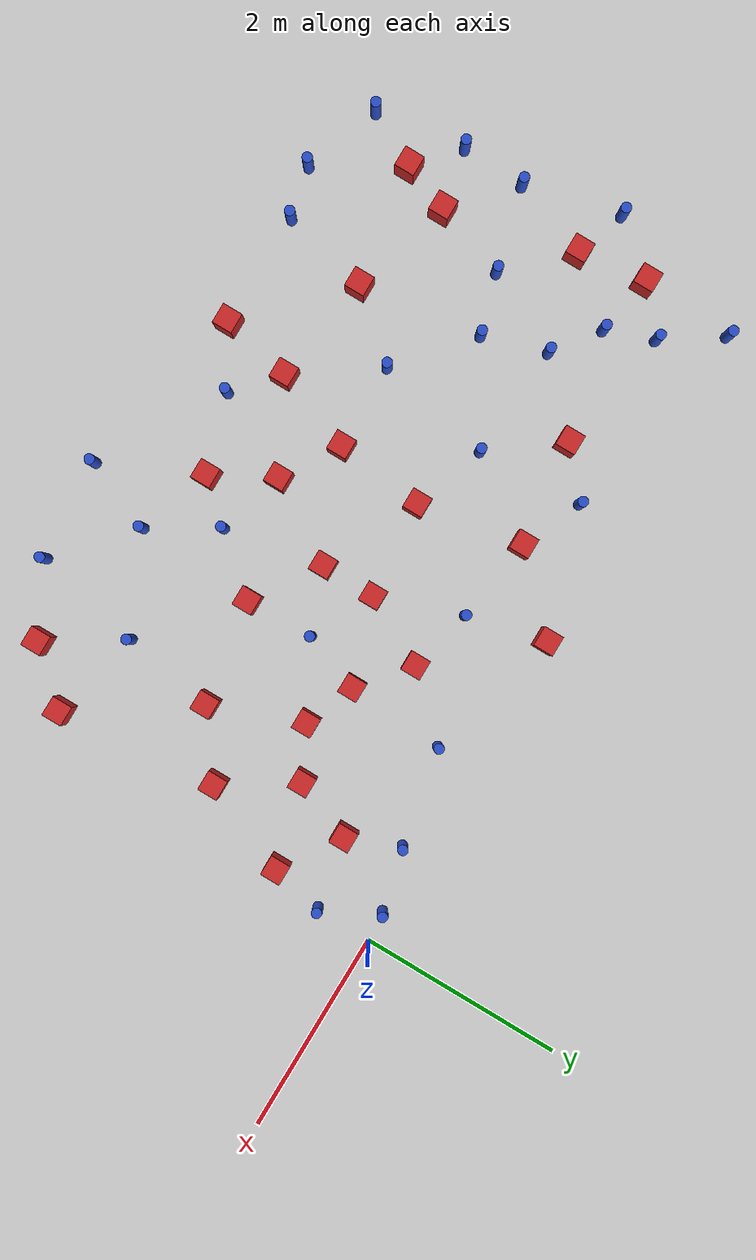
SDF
<sdf version="1.6">
 <world name="default">
  <model name="ground_plane">
   <static>1</static>
   <link name="link">
    <collision name="collision">
     <geometry><plane><normal>0 0 1</normal><size>100 100</size></plane></geometry>
     <surface><friction><ode><mu>100</mu><mu2>50</mu2></ode></friction></surface>
    </collision>
    <visual name="visual">
     <cast_shadows>0</cast_shadows>
     <geometry><plane><normal>0 0 1</normal><size>100 100</size></plane></geometry>
     <material>
      <ambient>1.0 1.0 1.0 1.0</ambient>
      <diffuse>0.8 0.8 0.8 1.0</diffuse>
      <specular>0.01 0.01 0.01 1.000000</specular>
     </material>
    </visual>
   </link>
  </model>
  <model name="pole_obstacle3">
   <static>true</static>
   <pose>-6.52432451563 -0.0444489107203 7.38925637345e-09 -8.47170692799e-08 1.24976765036e-08 -1.7451309302e-07</pose>
   <link name="link">
    <pose>0 0 0.3 0 -0 0</pose>
    <inertial>
     <mass>1</mass>
     <inertia><ixx>0.145833</ixx><ixy>0</ixy><ixz>0</ixz><iyy>0.145833</iyy><iyz>0</iyz><izz>0.125</izz></inertia>
    </inertial>
    <collision name="collision">
     <geometry><cylinder><radius>0.05</radius><length>.6</length></cylinder></geometry>
    </collision>
    <visual name="visual">
     <geometry><cylinder><radius>0.05</radius><length>.6</length></cylinder></geometry>
     <material>
      <script><name>Gazebo/Blue</name><uri>file://media/materials/scripts/gazebo.material</uri></script>
     </material>
    </visual>
   </link>
  </model>
  <model name="square_post_obstacle2">
   <static>true</static>
   <pose>-3.70692572244 -1.7061945904 1.91545236811e-07 -7.35059704564e-06 1.12565212e-07 2.39332434364e-05</pose>
   <link name="link">
    <pose>0 0 0.25 0 -0 0</pose>
    <inertial>
     <mass>100</mass>
     <inertia>
      <ixx>0.166667</ixx>
      <ixy>0</ixy>
      <ixz>0</ixz>
      <iyy>0.166667</iyy>
      <iyz>0</iyz>
      <izz>0.166667</izz>
     </inertia>
    </inertial>
    <collision name="collision"><geometry><box><size>.2 .2 .5</size></box></geometry></collision>
    <visual name="visual">
     <geometry><box><size>.2 .2 .5</size></box></geometry>
     <material>
      <script><name>Gazebo/Red</name><uri>file://media/materials/scripts/gazebo.material</uri></script>
     </material>
    </visual>
   </link>
  </model>
  <model name="square_post_obstacle3">
   <static>true</static>
   <pose>-3.88711328392 -0.675719960965 1.91545236811e-07 -7.35059704564e-06 1.12565212e-07 2.39332434364e-05</pose>
   <link name="link">
    <pose>0 0 0.25 0 -0 0</pose>
    <inertial>
     <mass>100</mass>
     <inertia>
      <ixx>0.166667</ixx>
      <ixy>0</ixy>
      <ixz>0</ixz>
      <iyy>0.166667</iyy>
      <iyz>0</iyz>
      <izz>0.166667</izz>
     </inertia>
    </inertial>
    <collision name="collision"><geometry><box><size>.2 .2 .5</size></box></geometry></collision>
    <visual name="visual">
     <geometry><box><size>.2 .2 .5</size></box></geometry>
     <material>
      <script><name>Gazebo/Red</name><uri>file://media/materials/scripts/gazebo.material</uri></script>
     </material>
    </visual>
   </link>
  </model>
  <model name="pole_obstacle8">
   <static>true</static>
   <pose>-5.37966165243 -4.06961896865 7.38925637345e-09 -8.47170692796e-08 1.24976764786e-08 -1.74513093032e-07</pose>
   <link name="link">
    <pose>0 0 0.3 0 -0 0</pose>
    <inertial>
     <mass>1</mass>
     <inertia><ixx>0.145833</ixx><ixy>0</ixy><ixz>0</ixz><iyy>0.145833</iyy><iyz>0</iyz><izz>0.125</izz></inertia>
    </inertial>
    <collision name="collision">
     <geometry><cylinder><radius>0.05</radius><length>.6</length></cylinder></geometry>
    </collision>
    <visual name="visual">
     <geometry><cylinder><radius>0.05</radius><length>.6</length></cylinder></geometry>
     <material>
      <script><name>Gazebo/Blue</name><uri>file://media/materials/scripts/gazebo.material</uri></script>
     </material>
    </visual>
   </link>
  </model>
  <model name="square_post_obstacle10">
   <static>true</static>
   <pose>-6.34527799305 -3.37768642562 1.91545236811e-07 -7.35059704564e-06 1.12565212e-07 2.39332434364e-05</pose>
   <link name="link">
    <pose>0 0 0.25 0 -0 0</pose>
    <inertial>
     <mass>100</mass>
     <inertia>
      <ixx>0.166667</ixx>
      <ixy>0</ixy>
      <ixz>0</ixz>
      <iyy>0.166667</iyy>
      <iyz>0</iyz>
      <izz>0.166667</izz>
     </inertia>
    </inertial>
    <collision name="collision"><geometry><box><size>.2 .2 .5</size></box></geometry></collision>
    <visual name="visual">
     <geometry><box><size>.2 .2 .5</size></box></geometry>
     <material>
      <script><name>Gazebo/Red</name><uri>file://media/materials/scripts/gazebo.material</uri></script>
     </material>
    </visual>
   </link>
  </model>
  <model name="square_post_obstacle11">
   <static>true</static>
   <pose>-2.42287995631 -0.95356776099 1.91545236811e-07 -7.35059704564e-06 1.12565212e-07 2.39332434364e-05</pose>
   <link name="link">
    <pose>0 0 0.25 0 -0 0</pose>
    <inertial>
     <mass>100</mass>
     <inertia>
      <ixx>0.166667</ixx>
      <ixy>0</ixy>
      <ixz>0</ixz>
      <iyy>0.166667</iyy>
      <iyz>0</iyz>
      <izz>0.166667</izz>
     </inertia>
    </inertial>
    <collision name="collision"><geometry><box><size>.2 .2 .5</size></box></geometry></collision>
    <visual name="visual">
     <geometry><box><size>.2 .2 .5</size></box></geometry>
     <material>
      <script><name>Gazebo/Red</name><uri>file://media/materials/scripts/gazebo.material</uri></script>
     </material>
    </visual>
   </link>
  </model>
  <model name="pole_obstacle19">
   <static>true</static>
   <pose>-1.26880020867 -3.33482278495 7.38925637345e-09 -8.47170692799e-08 1.24976765053e-08 -1.74513093017e-07</pose>
   <link name="link">
    <pose>0 0 0.3 0 -0 0</pose>
    <inertial>
     <mass>1</mass>
     <inertia><ixx>0.145833</ixx><ixy>0</ixy><ixz>0</ixz><iyy>0.145833</iyy><iyz>0</iyz><izz>0.125</izz></inertia>
    </inertial>
    <collision name="collision">
     <geometry><cylinder><radius>0.05</radius><length>.6</length></cylinder></geometry>
    </collision>
    <visual name="visual">
     <geometry><cylinder><radius>0.05</radius><length>.6</length></cylinder></geometry>
     <material>
      <script><name>Gazebo/Blue</name><uri>file://media/materials/scripts/gazebo.material</uri></script>
     </material>
    </visual>
   </link>
  </model>
  <model name="pole_obstacle22">
   <static>true</static>
   <pose>-2.21132156115 -3.77076330193 7.38925637345e-09 -8.47170692798e-08 1.24976764939e-08 -1.74513093025e-07</pose>
   <link name="link">
    <pose>0 0 0.3 0 -0 0</pose>
    <inertial>
     <mass>1</mass>
     <inertia><ixx>0.145833</ixx><ixy>0</ixy><ixz>0</ixz><iyy>0.145833</iyy><iyz>0</iyz><izz>0.125</izz></inertia>
    </inertial>
    <collision name="collision">
     <geometry><cylinder><radius>0.05</radius><length>.6</length></cylinder></geometry>
    </collision>
    <visual name="visual">
     <geometry><cylinder><radius>0.05</radius><length>.6</length></cylinder></geometry>
     <material>
      <script><name>Gazebo/Blue</name><uri>file://media/materials/scripts/gazebo.material</uri></script>
     </material>
    </visual>
   </link>
  </model>
  <model name="pole_obstacle24">
   <static>true</static>
   <pose>-6.76390360113 -3.02652793016 7.38925637345e-09 -8.47170692798e-08 1.24976764937e-08 -1.74513093023e-07</pose>
   <link name="link">
    <pose>0 0 0.3 0 -0 0</pose>
    <inertial>
     <mass>1</mass>
     <inertia><ixx>0.145833</ixx><ixy>0</ixy><ixz>0</ixz><iyy>0.145833</iyy><iyz>0</iyz><izz>0.125</izz></inertia>
    </inertial>
    <collision name="collision">
     <geometry><cylinder><radius>0.05</radius><length>.6</length></cylinder></geometry>
    </collision>
    <visual name="visual">
     <geometry><cylinder><radius>0.05</radius><length>.6</length></cylinder></geometry>
     <material>
      <script><name>Gazebo/Blue</name><uri>file://media/materials/scripts/gazebo.material</uri></script>
     </material>
    </visual>
   </link>
  </model>
  <model name="square_post_obstacle19">
   <static>true</static>
   <pose>-0.156634946968 -1.08705150443 1.91545236811e-07 -7.35059704564e-06 1.12565212e-07 2.39332434364e-05</pose>
   <link name="link">
    <pose>0 0 0.25 0 -0 0</pose>
    <inertial>
     <mass>100</mass>
     <inertia>
      <ixx>0.166667</ixx>
      <ixy>0</ixy>
      <ixz>0</ixz>
      <iyy>0.166667</iyy>
      <iyz>0</iyz>
      <izz>0.166667</izz>
     </inertia>
    </inertial>
    <collision name="collision"><geometry><box><size>.2 .2 .5</size></box></geometry></collision>
    <visual name="visual">
     <geometry><box><size>.2 .2 .5</size></box></geometry>
     <material>
      <script><name>Gazebo/Red</name><uri>file://media/materials/scripts/gazebo.material</uri></script>
     </material>
    </visual>
   </link>
  </model>
  <model name="square_post_obstacle29">
   <static>true</static>
   <pose>-2.76971232478 -1.61561775754 1.91545236811e-07 -7.35059704564e-06 1.12565212e-07 2.39332434364e-05</pose>
   <link name="link">
    <pose>0 0 0.25 0 -0 0</pose>
    <inertial>
     <mass>100</mass>
     <inertia>
      <ixx>0.166667</ixx>
      <ixy>0</ixy>
      <ixz>0</ixz>
      <iyy>0.166667</iyy>
      <iyz>0</iyz>
      <izz>0.166667</izz>
     </inertia>
    </inertial>
    <collision name="collision"><geometry><box><size>.2 .2 .5</size></box></geometry></collision>
    <visual name="visual">
     <geometry><box><size>.2 .2 .5</size></box></geometry>
     <material>
      <script><name>Gazebo/Red</name><uri>file://media/materials/scripts/gazebo.material</uri></script>
     </material>
    </visual>
   </link>
  </model>
  <model name="square_post_obstacle30">
   <static>true</static>
   <pose>-2.93852463587 -3.50651644793 1.91545236811e-07 -7.35059704564e-06 1.12565212e-07 2.39332434364e-05</pose>
   <link name="link">
    <pose>0 0 0.25 0 -0 0</pose>
    <inertial>
     <mass>100</mass>
     <inertia>
      <ixx>0.166667</ixx>
      <ixy>0</ixy>
      <ixz>0</ixz>
      <iyy>0.166667</iyy>
      <iyz>0</iyz>
      <izz>0.166667</izz>
     </inertia>
    </inertial>
    <collision name="collision"><geometry><box><size>.2 .2 .5</size></box></geometry></collision>
    <visual name="visual">
     <geometry><box><size>.2 .2 .5</size></box></geometry>
     <material>
      <script><name>Gazebo/Red</name><uri>file://media/materials/scripts/gazebo.material</uri></script>
     </material>
    </visual>
   </link>
  </model>
  <model name="pole_obstacle39">
   <static>true</static>
   <pose>-0.0265494629693 -0.564939502871 7.38925637345e-09 -8.47170692798e-08 1.24976764914e-08 -1.74513093025e-07</pose>
   <link name="link">
    <pose>0 0 0.3 0 -0 0</pose>
    <inertial>
     <mass>1</mass>
     <inertia><ixx>0.145833</ixx><ixy>0</ixy><ixz>0</ixz><iyy>0.145833</iyy><iyz>0</iyz><izz>0.125</izz></inertia>
    </inertial>
    <collision name="collision">
     <geometry><cylinder><radius>0.05</radius><length>.6</length></cylinder></geometry>
    </collision>
    <visual name="visual">
     <geometry><cylinder><radius>0.05</radius><length>.6</length></cylinder></geometry>
     <material>
      <script><name>Gazebo/Blue</name><uri>file://media/materials/scripts/gazebo.material</uri></script>
     </material>
    </visual>
   </link>
  </model>
  <model name="square_post_obstacle31">
   <static>true</static>
   <pose>-1.12243625598 -2.42116664696 1.91545236811e-07 -7.35059704564e-06 1.12565212e-07 2.39332434364e-05</pose>
   <link name="link">
    <pose>0 0 0.25 0 -0 0</pose>
    <inertial>
     <mass>100</mass>
     <inertia>
      <ixx>0.166667</ixx>
      <ixy>0</ixy>
      <ixz>0</ixz>
      <iyy>0.166667</iyy>
      <iyz>0</iyz>
      <izz>0.166667</izz>
     </inertia>
    </inertial>
    <collision name="collision"><geometry><box><size>.2 .2 .5</size></box></geometry></collision>
    <visual name="visual">
     <geometry><box><size>.2 .2 .5</size></box></geometry>
     <material>
      <script><name>Gazebo/Red</name><uri>file://media/materials/scripts/gazebo.material</uri></script>
     </material>
    </visual>
   </link>
  </model>
  <model name="pole_obstacle43">
   <static>true</static>
   <pose>-0.922115328884 -0.188899345458 7.38925637345e-09 -8.47170692799e-08 1.24976765096e-08 -1.74513093014e-07</pose>
   <link name="link">
    <pose>0 0 0.3 0 -0 0</pose>
    <inertial>
     <mass>1</mass>
     <inertia><ixx>0.145833</ixx><ixy>0</ixy><ixz>0</ixz><iyy>0.145833</iyy><iyz>0</iyz><izz>0.125</izz></inertia>
    </inertial>
    <collision name="collision">
     <geometry><cylinder><radius>0.05</radius><length>.6</length></cylinder></geometry>
    </collision>
    <visual name="visual">
     <geometry><cylinder><radius>0.05</radius><length>.6</length></cylinder></geometry>
     <material>
      <script><name>Gazebo/Blue</name><uri>file://media/materials/scripts/gazebo.material</uri></script>
     </material>
    </visual>
   </link>
  </model>
  <model name="pole_obstacle55">
   <static>true</static>
   <pose>-6.63234236846 -3.90736994178 7.38925637345e-09 -8.47170692798e-08 1.24976764937e-08 -1.74513093023e-07</pose>
   <link name="link">
    <pose>0 0 0.3 0 -0 0</pose>
    <inertial>
     <mass>1</mass>
     <inertia><ixx>0.145833</ixx><ixy>0</ixy><ixz>0</ixz><iyy>0.145833</iyy><iyz>0</iyz><izz>0.125</izz></inertia>
    </inertial>
    <collision name="collision">
     <geometry><cylinder><radius>0.05</radius><length>.6</length></cylinder></geometry>
    </collision>
    <visual name="visual">
     <geometry><cylinder><radius>0.05</radius><length>.6</length></cylinder></geometry>
     <material>
      <script><name>Gazebo/Blue</name><uri>file://media/materials/scripts/gazebo.material</uri></script>
     </material>
    </visual>
   </link>
  </model>
  <model name="square_post_obstacle52">
   <static>true</static>
   <pose>-6.4682823946 -1.62873893158 1.91545236811e-07 -7.35059704564e-06 1.12565212e-07 2.39332434364e-05</pose>
   <link name="link">
    <pose>0 0 0.25 0 -0 0</pose>
    <inertial>
     <mass>100</mass>
     <inertia>
      <ixx>0.166667</ixx>
      <ixy>0</ixy>
      <ixz>0</ixz>
      <iyy>0.166667</iyy>
      <iyz>0</iyz>
      <izz>0.166667</izz>
     </inertia>
    </inertial>
    <collision name="collision"><geometry><box><size>.2 .2 .5</size></box></geometry></collision>
    <visual name="visual">
     <geometry><box><size>.2 .2 .5</size></box></geometry>
     <material>
      <script><name>Gazebo/Red</name><uri>file://media/materials/scripts/gazebo.material</uri></script>
     </material>
    </visual>
   </link>
  </model>
  <model name="pole_obstacle74">
   <static>true</static>
   <pose>-1.5056622778 -4.39693730111 7.38925637345e-09 -8.47170692799e-08 1.24976765033e-08 -1.74513093018e-07</pose>
   <link name="link">
    <pose>0 0 0.3 0 -0 0</pose>
    <inertial>
     <mass>1</mass>
     <inertia><ixx>0.145833</ixx><ixy>0</ixy><ixz>0</ixz><iyy>0.145833</iyy><iyz>0</iyz><izz>0.125</izz></inertia>
    </inertial>
    <collision name="collision">
     <geometry><cylinder><radius>0.05</radius><length>.6</length></cylinder></geometry>
    </collision>
    <visual name="visual">
     <geometry><cylinder><radius>0.05</radius><length>.6</length></cylinder></geometry>
     <material>
      <script><name>Gazebo/Blue</name><uri>file://media/materials/scripts/gazebo.material</uri></script>
     </material>
    </visual>
   </link>
  </model>
  <model name="pole_obstacle91">
   <static>true</static>
   <pose>-5.54018511833 -1.38757523051 7.38925637345e-09 -8.471706928e-08 1.24976765134e-08 -1.74513093015e-07</pose>
   <link name="link">
    <pose>0 0 0.3 0 -0 0</pose>
    <inertial>
     <mass>1</mass>
     <inertia><ixx>0.145833</ixx><ixy>0</ixy><ixz>0</ixz><iyy>0.145833</iyy><iyz>0</iyz><izz>0.125</izz></inertia>
    </inertial>
    <collision name="collision">
     <geometry><cylinder><radius>0.05</radius><length>.6</length></cylinder></geometry>
    </collision>
    <visual name="visual">
     <geometry><cylinder><radius>0.05</radius><length>.6</length></cylinder></geometry>
     <material>
      <script><name>Gazebo/Blue</name><uri>file://media/materials/scripts/gazebo.material</uri></script>
     </material>
    </visual>
   </link>
  </model>
  <model name="square_post_obstacle85">
   <static>true</static>
   <pose>-1.45206795194 -1.5387293437 1.91545236811e-07 -7.35059704564e-06 1.12565212e-07 2.39332434364e-05</pose>
   <link name="link">
    <pose>0 0 0.25 0 -0 0</pose>
    <inertial>
     <mass>100</mass>
     <inertia>
      <ixx>0.166667</ixx>
      <ixy>0</ixy>
      <ixz>0</ixz>
      <iyy>0.166667</iyy>
      <iyz>0</iyz>
      <izz>0.166667</izz>
     </inertia>
    </inertial>
    <collision name="collision"><geometry><box><size>.2 .2 .5</size></box></geometry></collision>
    <visual name="visual">
     <geometry><box><size>.2 .2 .5</size></box></geometry>
     <material>
      <script><name>Gazebo/Red</name><uri>file://media/materials/scripts/gazebo.material</uri></script>
     </material>
    </visual>
   </link>
  </model>
  <model name="square_post_obstacle89">
   <static>true</static>
   <pose>-0.730378002831 -0.702988328249 1.91545236811e-07 -7.35059704564e-06 1.12565212e-07 2.39332434364e-05</pose>
   <link name="link">
    <pose>0 0 0.25 0 -0 0</pose>
    <inertial>
     <mass>100</mass>
     <inertia>
      <ixx>0.166667</ixx>
      <ixy>0</ixy>
      <ixz>0</ixz>
      <iyy>0.166667</iyy>
      <iyz>0</iyz>
      <izz>0.166667</izz>
     </inertia>
    </inertial>
    <collision name="collision"><geometry><box><size>.2 .2 .5</size></box></geometry></collision>
    <visual name="visual">
     <geometry><box><size>.2 .2 .5</size></box></geometry>
     <material>
      <script><name>Gazebo/Red</name><uri>file://media/materials/scripts/gazebo.material</uri></script>
     </material>
    </visual>
   </link>
  </model>
  <model name="pole_obstacle101">
   <static>true</static>
   <pose>-4.65266463231 -2.59816612865 7.38925637345e-09 -8.47170692798e-08 1.24976764937e-08 -1.74513093023e-07</pose>
   <link name="link">
    <pose>0 0 0.3 0 -0 0</pose>
    <inertial>
     <mass>1</mass>
     <inertia><ixx>0.145833</ixx><ixy>0</ixy><ixz>0</ixz><iyy>0.145833</iyy><iyz>0</iyz><izz>0.125</izz></inertia>
    </inertial>
    <collision name="collision">
     <geometry><cylinder><radius>0.05</radius><length>.6</length></cylinder></geometry>
    </collision>
    <visual name="visual">
     <geometry><cylinder><radius>0.05</radius><length>.6</length></cylinder></geometry>
     <material>
      <script><name>Gazebo/Blue</name><uri>file://media/materials/scripts/gazebo.material</uri></script>
     </material>
    </visual>
   </link>
  </model>
  <model name="square_post_obstacle94">
   <static>true</static>
   <pose>-2.13864173265 -2.58306816552 1.91545236811e-07 -7.35059704564e-06 1.12565212e-07 2.39332434364e-05</pose>
   <link name="link">
    <pose>0 0 0.25 0 -0 0</pose>
    <inertial>
     <mass>100</mass>
     <inertia>
      <ixx>0.166667</ixx>
      <ixy>0</ixy>
      <ixz>0</ixz>
      <iyy>0.166667</iyy>
      <iyz>0</iyz>
      <izz>0.166667</izz>
     </inertia>
    </inertial>
    <collision name="collision"><geometry><box><size>.2 .2 .5</size></box></geometry></collision>
    <visual name="visual">
     <geometry><box><size>.2 .2 .5</size></box></geometry>
     <material>
      <script><name>Gazebo/Red</name><uri>file://media/materials/scripts/gazebo.material</uri></script>
     </material>
    </visual>
   </link>
  </model>
  <model name="pole_obstacle106">
   <static>true</static>
   <pose>-6.74138721276 -2.39681399516 7.38925637345e-09 -8.47170692798e-08 1.24976764937e-08 -1.74513093023e-07</pose>
   <link name="link">
    <pose>0 0 0.3 0 -0 0</pose>
    <inertial>
     <mass>1</mass>
     <inertia><ixx>0.145833</ixx><ixy>0</ixy><ixz>0</ixz><iyy>0.145833</iyy><iyz>0</iyz><izz>0.125</izz></inertia>
    </inertial>
    <collision name="collision">
     <geometry><cylinder><radius>0.05</radius><length>.6</length></cylinder></geometry>
    </collision>
    <visual name="visual">
     <geometry><cylinder><radius>0.05</radius><length>.6</length></cylinder></geometry>
     <material>
      <script><name>Gazebo/Blue</name><uri>file://media/materials/scripts/gazebo.material</uri></script>
     </material>
    </visual>
   </link>
  </model>
  <model name="pole_obstacle114">
   <static>true</static>
   <pose>-2.50338091352 -4.46691991595 7.38925637345e-09 -8.47170692798e-08 1.24976765033e-08 -1.74513093019e-07</pose>
   <link name="link">
    <pose>0 0 0.3 0 -0 0</pose>
    <inertial>
     <mass>1</mass>
     <inertia><ixx>0.145833</ixx><ixy>0</ixy><ixz>0</ixz><iyy>0.145833</iyy><iyz>0</iyz><izz>0.125</izz></inertia>
    </inertial>
    <collision name="collision">
     <geometry><cylinder><radius>0.05</radius><length>.6</length></cylinder></geometry>
    </collision>
    <visual name="visual">
     <geometry><cylinder><radius>0.05</radius><length>.6</length></cylinder></geometry>
     <material>
      <script><name>Gazebo/Blue</name><uri>file://media/materials/scripts/gazebo.material</uri></script>
     </material>
    </visual>
   </link>
  </model>
  <model name="pole_obstacle121">
   <static>true</static>
   <pose>-6.98115264469 -1.45860127084 7.38925637345e-09 -8.471706928e-08 1.24976765134e-08 -1.74513093015e-07</pose>
   <link name="link">
    <pose>0 0 0.3 0 -0 0</pose>
    <inertial>
     <mass>1</mass>
     <inertia><ixx>0.145833</ixx><ixy>0</ixy><ixz>0</ixz><iyy>0.145833</iyy><iyz>0</iyz><izz>0.125</izz></inertia>
    </inertial>
    <collision name="collision">
     <geometry><cylinder><radius>0.05</radius><length>.6</length></cylinder></geometry>
    </collision>
    <visual name="visual">
     <geometry><cylinder><radius>0.05</radius><length>.6</length></cylinder></geometry>
     <material>
      <script><name>Gazebo/Blue</name><uri>file://media/materials/scripts/gazebo.material</uri></script>
     </material>
    </visual>
   </link>
  </model>
  <model name="pole_obstacle125">
   <static>true</static>
   <pose>-2.59412136716 -3.12690519862 7.38925637345e-09 -8.47170692798e-08 1.24976764939e-08 -1.74513093025e-07</pose>
   <link name="link">
    <pose>0 0 0.3 0 -0 0</pose>
    <inertial>
     <mass>1</mass>
     <inertia><ixx>0.145833</ixx><ixy>0</ixy><ixz>0</ixz><iyy>0.145833</iyy><iyz>0</iyz><izz>0.125</izz></inertia>
    </inertial>
    <collision name="collision">
     <geometry><cylinder><radius>0.05</radius><length>.6</length></cylinder></geometry>
    </collision>
    <visual name="visual">
     <geometry><cylinder><radius>0.05</radius><length>.6</length></cylinder></geometry>
     <material>
      <script><name>Gazebo/Blue</name><uri>file://media/materials/scripts/gazebo.material</uri></script>
     </material>
    </visual>
   </link>
  </model>
  <model name="pole_obstacle127">
   <static>true</static>
   <pose>-5.87792899911 -4.18277182565 7.38925637345e-09 -8.47170692796e-08 1.24976764786e-08 -1.74513093032e-07</pose>
   <link name="link">
    <pose>0 0 0.3 0 -0 0</pose>
    <inertial>
     <mass>1</mass>
     <inertia><ixx>0.145833</ixx><ixy>0</ixy><ixz>0</ixz><iyy>0.145833</iyy><iyz>0</iyz><izz>0.125</izz></inertia>
    </inertial>
    <collision name="collision">
     <geometry><cylinder><radius>0.05</radius><length>.6</length></cylinder></geometry>
    </collision>
    <visual name="visual">
     <geometry><cylinder><radius>0.05</radius><length>.6</length></cylinder></geometry>
     <material>
      <script><name>Gazebo/Blue</name><uri>file://media/materials/scripts/gazebo.material</uri></script>
     </material>
    </visual>
   </link>
  </model>
  <model name="pole_obstacle128">
   <static>true</static>
   <pose>-4.4860711374 -0.415650827678 7.38925637345e-09 -8.47170692798e-08 1.24976765003e-08 -1.7451309302e-07</pose>
   <link name="link">
    <pose>0 0 0.3 0 -0 0</pose>
    <inertial>
     <mass>1</mass>
     <inertia><ixx>0.145833</ixx><ixy>0</ixy><ixz>0</ixz><iyy>0.145833</iyy><iyz>0</iyz><izz>0.125</izz></inertia>
    </inertial>
    <collision name="collision">
     <geometry><cylinder><radius>0.05</radius><length>.6</length></cylinder></geometry>
    </collision>
    <visual name="visual">
     <geometry><cylinder><radius>0.05</radius><length>.6</length></cylinder></geometry>
     <material>
      <script><name>Gazebo/Blue</name><uri>file://media/materials/scripts/gazebo.material</uri></script>
     </material>
    </visual>
   </link>
  </model>
  <model name="square_post_obstacle124">
   <static>true</static>
   <pose>-4.1013489087 -3.36843926269 1.91545236811e-07 -7.35059704564e-06 1.12565212e-07 2.39332434364e-05</pose>
   <link name="link">
    <pose>0 0 0.25 0 -0 0</pose>
    <inertial>
     <mass>100</mass>
     <inertia>
      <ixx>0.166667</ixx>
      <ixy>0</ixy>
      <ixz>0</ixz>
      <iyy>0.166667</iyy>
      <iyz>0</iyz>
      <izz>0.166667</izz>
     </inertia>
    </inertial>
    <collision name="collision"><geometry><box><size>.2 .2 .5</size></box></geometry></collision>
    <visual name="visual">
     <geometry><box><size>.2 .2 .5</size></box></geometry>
     <material>
      <script><name>Gazebo/Red</name><uri>file://media/materials/scripts/gazebo.material</uri></script>
     </material>
    </visual>
   </link>
  </model>
  <model name="pole_obstacle136">
   <static>true</static>
   <pose>-3.69212782105 -3.74614294576 7.38925637345e-09 -8.47170692798e-08 1.24976764939e-08 -1.74513093025e-07</pose>
   <link name="link">
    <pose>0 0 0.3 0 -0 0</pose>
    <inertial>
     <mass>1</mass>
     <inertia><ixx>0.145833</ixx><ixy>0</ixy><ixz>0</ixz><iyy>0.145833</iyy><iyz>0</iyz><izz>0.125</izz></inertia>
    </inertial>
    <collision name="collision">
     <geometry><cylinder><radius>0.05</radius><length>.6</length></cylinder></geometry>
    </collision>
    <visual name="visual">
     <geometry><cylinder><radius>0.05</radius><length>.6</length></cylinder></geometry>
     <material>
      <script><name>Gazebo/Blue</name><uri>file://media/materials/scripts/gazebo.material</uri></script>
     </material>
    </visual>
   </link>
  </model>
  <model name="square_post_obstacle136">
   <static>true</static>
   <pose>-3.8058539096 -2.57666546132 1.91545236811e-07 -7.35059704564e-06 1.12565212e-07 2.39332434364e-05</pose>
   <link name="link">
    <pose>0 0 0.25 0 -0 0</pose>
    <inertial>
     <mass>100</mass>
     <inertia>
      <ixx>0.166667</ixx>
      <ixy>0</ixy>
      <ixz>0</ixz>
      <iyy>0.166667</iyy>
      <iyz>0</iyz>
      <izz>0.166667</izz>
     </inertia>
    </inertial>
    <collision name="collision"><geometry><box><size>.2 .2 .5</size></box></geometry></collision>
    <visual name="visual">
     <geometry><box><size>.2 .2 .5</size></box></geometry>
     <material>
      <script><name>Gazebo/Red</name><uri>file://media/materials/scripts/gazebo.material</uri></script>
     </material>
    </visual>
   </link>
  </model>
  <model name="square_post_obstacle137">
   <static>true</static>
   <pose>-3.23786510375 -0.024544919342 1.91545236811e-07 -7.35059704564e-06 1.12565212e-07 2.39332434364e-05</pose>
   <link name="link">
    <pose>0 0 0.25 0 -0 0</pose>
    <inertial>
     <mass>100</mass>
     <inertia>
      <ixx>0.166667</ixx>
      <ixy>0</ixy>
      <ixz>0</ixz>
      <iyy>0.166667</iyy>
      <iyz>0</iyz>
      <izz>0.166667</izz>
     </inertia>
    </inertial>
    <collision name="collision"><geometry><box><size>.2 .2 .5</size></box></geometry></collision>
    <visual name="visual">
     <geometry><box><size>.2 .2 .5</size></box></geometry>
     <material>
      <script><name>Gazebo/Red</name><uri>file://media/materials/scripts/gazebo.material</uri></script>
     </material>
    </visual>
   </link>
  </model>
  <model name="pole_obstacle151">
   <static>true</static>
   <pose>-3.05342508335 -0.793230905652 7.38925637345e-09 -8.471706928e-08 1.24976765177e-08 -1.74513093012e-07</pose>
   <link name="link">
    <pose>0 0 0.3 0 -0 0</pose>
    <inertial>
     <mass>1</mass>
     <inertia><ixx>0.145833</ixx><ixy>0</ixy><ixz>0</ixz><iyy>0.145833</iyy><iyz>0</iyz><izz>0.125</izz></inertia>
    </inertial>
    <collision name="collision">
     <geometry><cylinder><radius>0.05</radius><length>.6</length></cylinder></geometry>
    </collision>
    <visual name="visual">
     <geometry><cylinder><radius>0.05</radius><length>.6</length></cylinder></geometry>
     <material>
      <script><name>Gazebo/Blue</name><uri>file://media/materials/scripts/gazebo.material</uri></script>
     </material>
    </visual>
   </link>
  </model>
  <model name="square_post_obstacle146">
   <static>true</static>
   <pose>-3.25679873644 -2.92115871749 1.91545236811e-07 -7.35059704564e-06 1.12565212e-07 2.39332434364e-05</pose>
   <link name="link">
    <pose>0 0 0.25 0 -0 0</pose>
    <inertial>
     <mass>100</mass>
     <inertia>
      <ixx>0.166667</ixx>
      <ixy>0</ixy>
      <ixz>0</ixz>
      <iyy>0.166667</iyy>
      <iyz>0</iyz>
      <izz>0.166667</izz>
     </inertia>
    </inertial>
    <collision name="collision"><geometry><box><size>.2 .2 .5</size></box></geometry></collision>
    <visual name="visual">
     <geometry><box><size>.2 .2 .5</size></box></geometry>
     <material>
      <script><name>Gazebo/Red</name><uri>file://media/materials/scripts/gazebo.material</uri></script>
     </material>
    </visual>
   </link>
  </model>
  <model name="square_post_obstacle148">
   <static>true</static>
   <pose>-4.91721498927 -0.800770975645 1.91545236811e-07 -7.35059704564e-06 1.12565212e-07 2.39332434364e-05</pose>
   <link name="link">
    <pose>0 0 0.25 0 -0 0</pose>
    <inertial>
     <mass>100</mass>
     <inertia>
      <ixx>0.166667</ixx>
      <ixy>0</ixy>
      <ixz>0</ixz>
      <iyy>0.166667</iyy>
      <iyz>0</iyz>
      <izz>0.166667</izz>
     </inertia>
    </inertial>
    <collision name="collision"><geometry><box><size>.2 .2 .5</size></box></geometry></collision>
    <visual name="visual">
     <geometry><box><size>.2 .2 .5</size></box></geometry>
     <material>
      <script><name>Gazebo/Red</name><uri>file://media/materials/scripts/gazebo.material</uri></script>
     </material>
    </visual>
   </link>
  </model>
  <model name="pole_obstacle154">
   <static>true</static>
   <pose>-0.303978070792 -0.0321206275959 7.38925637345e-09 -8.47170692798e-08 1.24976764929e-08 -1.74513093025e-07</pose>
   <link name="link">
    <pose>0 0 0.3 0 -0 0</pose>
    <inertial>
     <mass>1</mass>
     <inertia><ixx>0.145833</ixx><ixy>0</ixy><ixz>0</ixz><iyy>0.145833</iyy><iyz>0</iyz><izz>0.125</izz></inertia>
    </inertial>
    <collision name="collision">
     <geometry><cylinder><radius>0.05</radius><length>.6</length></cylinder></geometry>
    </collision>
    <visual name="visual">
     <geometry><cylinder><radius>0.05</radius><length>.6</length></cylinder></geometry>
     <material>
      <script><name>Gazebo/Blue</name><uri>file://media/materials/scripts/gazebo.material</uri></script>
     </material>
    </visual>
   </link>
  </model>
  <model name="pole_obstacle155">
   <static>true</static>
   <pose>-5.97809376899 -1.06090150538 7.38925637345e-09 -8.471706928e-08 1.24976765134e-08 -1.74513093015e-07</pose>
   <link name="link">
    <pose>0 0 0.3 0 -0 0</pose>
    <inertial>
     <mass>1</mass>
     <inertia><ixx>0.145833</ixx><ixy>0</ixy><ixz>0</ixz><iyy>0.145833</iyy><iyz>0</iyz><izz>0.125</izz></inertia>
    </inertial>
    <collision name="collision">
     <geometry><cylinder><radius>0.05</radius><length>.6</length></cylinder></geometry>
    </collision>
    <visual name="visual">
     <geometry><cylinder><radius>0.05</radius><length>.6</length></cylinder></geometry>
     <material>
      <script><name>Gazebo/Blue</name><uri>file://media/materials/scripts/gazebo.material</uri></script>
     </material>
    </visual>
   </link>
  </model>
  <model name="pole_obstacle162">
   <static>true</static>
   <pose>-6.15336710575 -0.592223643378 7.38925637345e-09 -8.47170692799e-08 1.24976765038e-08 -1.74513093018e-07</pose>
   <link name="link">
    <pose>0 0 0.3 0 -0 0</pose>
    <inertial>
     <mass>1</mass>
     <inertia><ixx>0.145833</ixx><ixy>0</ixy><ixz>0</ixz><iyy>0.145833</iyy><iyz>0</iyz><izz>0.125</izz></inertia>
    </inertial>
    <collision name="collision">
     <geometry><cylinder><radius>0.05</radius><length>.6</length></cylinder></geometry>
    </collision>
    <visual name="visual">
     <geometry><cylinder><radius>0.05</radius><length>.6</length></cylinder></geometry>
     <material>
      <script><name>Gazebo/Blue</name><uri>file://media/materials/scripts/gazebo.material</uri></script>
     </material>
    </visual>
   </link>
  </model>
  <model name="square_post_obstacle155">
   <static>true</static>
   <pose>-0.376033443142 -3.54781501761 1.91545236811e-07 -7.35059704564e-06 1.12565212e-07 2.39332434364e-05</pose>
   <link name="link">
    <pose>0 0 0.25 0 -0 0</pose>
    <inertial>
     <mass>100</mass>
     <inertia>
      <ixx>0.166667</ixx>
      <ixy>0</ixy>
      <ixz>0</ixz>
      <iyy>0.166667</iyy>
      <iyz>0</iyz>
      <izz>0.166667</izz>
     </inertia>
    </inertial>
    <collision name="collision"><geometry><box><size>.2 .2 .5</size></box></geometry></collision>
    <visual name="visual">
     <geometry><box><size>.2 .2 .5</size></box></geometry>
     <material>
      <script><name>Gazebo/Red</name><uri>file://media/materials/scripts/gazebo.material</uri></script>
     </material>
    </visual>
   </link>
  </model>
  <model name="square_post_obstacle156">
   <static>true</static>
   <pose>-6.55653978231 -0.956836545317 1.91545236811e-07 -7.35059704564e-06 1.12565212e-07 2.39332434364e-05</pose>
   <link name="link">
    <pose>0 0 0.25 0 -0 0</pose>
    <inertial>
     <mass>100</mass>
     <inertia>
      <ixx>0.166667</ixx>
      <ixy>0</ixy>
      <ixz>0</ixz>
      <iyy>0.166667</iyy>
      <iyz>0</iyz>
      <izz>0.166667</izz>
     </inertia>
    </inertial>
    <collision name="collision"><geometry><box><size>.2 .2 .5</size></box></geometry></collision>
    <visual name="visual">
     <geometry><box><size>.2 .2 .5</size></box></geometry>
     <material>
      <script><name>Gazebo/Red</name><uri>file://media/materials/scripts/gazebo.material</uri></script>
     </material>
    </visual>
   </link>
  </model>
  <model name="square_post_obstacle165">
   <static>true</static>
   <pose>-5.16695301244 -3.20247508091 1.91545236811e-07 -7.35059704564e-06 1.12565212e-07 2.39332434364e-05</pose>
   <link name="link">
    <pose>0 0 0.25 0 -0 0</pose>
    <inertial>
     <mass>100</mass>
     <inertia>
      <ixx>0.166667</ixx>
      <ixy>0</ixy>
      <ixz>0</ixz>
      <iyy>0.166667</iyy>
      <iyz>0</iyz>
      <izz>0.166667</izz>
     </inertia>
    </inertial>
    <collision name="collision"><geometry><box><size>.2 .2 .5</size></box></geometry></collision>
    <visual name="visual">
     <geometry><box><size>.2 .2 .5</size></box></geometry>
     <material>
      <script><name>Gazebo/Red</name><uri>file://media/materials/scripts/gazebo.material</uri></script>
     </material>
    </visual>
   </link>
  </model>
  <model name="square_post_obstacle171">
   <static>true</static>
   <pose>-2.77627977251 -2.15362815865 1.91545236811e-07 -7.35059704564e-06 1.12565212e-07 2.39332434364e-05</pose>
   <link name="link">
    <pose>0 0 0.25 0 -0 0</pose>
    <inertial>
     <mass>100</mass>
     <inertia>
      <ixx>0.166667</ixx>
      <ixy>0</ixy>
      <ixz>0</ixz>
      <iyy>0.166667</iyy>
      <iyz>0</iyz>
      <izz>0.166667</izz>
     </inertia>
    </inertial>
    <collision name="collision"><geometry><box><size>.2 .2 .5</size></box></geometry></collision>
    <visual name="visual">
     <geometry><box><size>.2 .2 .5</size></box></geometry>
     <material>
      <script><name>Gazebo/Red</name><uri>file://media/materials/scripts/gazebo.material</uri></script>
     </material>
    </visual>
   </link>
  </model>
  <model name="pole_obstacle171">
   <static>true</static>
   <pose>-5.92865768623 -2.1834153327 7.38925637345e-09 -8.47170692798e-08 1.24976764937e-08 -1.74513093023e-07</pose>
   <link name="link">
    <pose>0 0 0.3 0 -0 0</pose>
    <inertial>
     <mass>1</mass>
     <inertia><ixx>0.145833</ixx><ixy>0</ixy><ixz>0</ixz><iyy>0.145833</iyy><iyz>0</iyz><izz>0.125</izz></inertia>
    </inertial>
    <collision name="collision">
     <geometry><cylinder><radius>0.05</radius><length>.6</length></cylinder></geometry>
    </collision>
    <visual name="visual">
     <geometry><cylinder><radius>0.05</radius><length>.6</length></cylinder></geometry>
     <material>
      <script><name>Gazebo/Blue</name><uri>file://media/materials/scripts/gazebo.material</uri></script>
     </material>
    </visual>
   </link>
  </model>
  <model name="square_post_obstacle174">
   <static>true</static>
   <pose>-0.827737108694 -4.04531236476 1.91545236811e-07 -7.35059704564e-06 1.12565212e-07 2.39332434364e-05</pose>
   <link name="link">
    <pose>0 0 0.25 0 -0 0</pose>
    <inertial>
     <mass>100</mass>
     <inertia>
      <ixx>0.166667</ixx>
      <ixy>0</ixy>
      <ixz>0</ixz>
      <iyy>0.166667</iyy>
      <iyz>0</iyz>
      <izz>0.166667</izz>
     </inertia>
    </inertial>
    <collision name="collision"><geometry><box><size>.2 .2 .5</size></box></geometry></collision>
    <visual name="visual">
     <geometry><box><size>.2 .2 .5</size></box></geometry>
     <material>
      <script><name>Gazebo/Red</name><uri>file://media/materials/scripts/gazebo.material</uri></script>
     </material>
    </visual>
   </link>
  </model>
  <model name="pole_obstacle178">
   <static>true</static>
   <pose>-2.15274828129 -1.91836739006 7.38925637345e-09 -8.471706928e-08 1.24976765152e-08 -1.74513093012e-07</pose>
   <link name="link">
    <pose>0 0 0.3 0 -0 0</pose>
    <inertial>
     <mass>1</mass>
     <inertia><ixx>0.145833</ixx><ixy>0</ixy><ixz>0</ixz><iyy>0.145833</iyy><iyz>0</iyz><izz>0.125</izz></inertia>
    </inertial>
    <collision name="collision">
     <geometry><cylinder><radius>0.05</radius><length>.6</length></cylinder></geometry>
    </collision>
    <visual name="visual">
     <geometry><cylinder><radius>0.05</radius><length>.6</length></cylinder></geometry>
     <material>
      <script><name>Gazebo/Blue</name><uri>file://media/materials/scripts/gazebo.material</uri></script>
     </material>
    </visual>
   </link>
  </model>
  <model name="square_post_obstacle177">
   <static>true</static>
   <pose>-6.16133204258 -2.90581916185 1.91545236811e-07 -7.35059704564e-06 1.12565212e-07 2.39332434364e-05</pose>
   <link name="link">
    <pose>0 0 0.25 0 -0 0</pose>
    <inertial>
     <mass>100</mass>
     <inertia>
      <ixx>0.166667</ixx>
      <ixy>0</ixy>
      <ixz>0</ixz>
      <iyy>0.166667</iyy>
      <iyz>0</iyz>
      <izz>0.166667</izz>
     </inertia>
    </inertial>
    <collision name="collision"><geometry><box><size>.2 .2 .5</size></box></geometry></collision>
    <visual name="visual">
     <geometry><box><size>.2 .2 .5</size></box></geometry>
     <material>
      <script><name>Gazebo/Red</name><uri>file://media/materials/scripts/gazebo.material</uri></script>
     </material>
    </visual>
   </link>
  </model>
  <model name="pole_obstacle185">
   <static>true</static>
   <pose>-4.42756063826 -1.45805217131 7.38925637345e-09 -8.471706928e-08 1.24976765134e-08 -1.74513093015e-07</pose>
   <link name="link">
    <pose>0 0 0.3 0 -0 0</pose>
    <inertial>
     <mass>1</mass>
     <inertia><ixx>0.145833</ixx><ixy>0</ixy><ixz>0</ixz><iyy>0.145833</iyy><iyz>0</iyz><izz>0.125</izz></inertia>
    </inertial>
    <collision name="collision">
     <geometry><cylinder><radius>0.05</radius><length>.6</length></cylinder></geometry>
    </collision>
    <visual name="visual">
     <geometry><cylinder><radius>0.05</radius><length>.6</length></cylinder></geometry>
     <material>
      <script><name>Gazebo/Blue</name><uri>file://media/materials/scripts/gazebo.material</uri></script>
     </material>
    </visual>
   </link>
  </model>
  <model name="square_post_obstacle184">
   <static>true</static>
   <pose>-4.25555141425 -4.06400265377 1.91545236811e-07 -7.35059704564e-06 1.12565212e-07 2.39332434364e-05</pose>
   <link name="link">
    <pose>0 0 0.25 0 -0 0</pose>
    <inertial>
     <mass>100</mass>
     <inertia>
      <ixx>0.166667</ixx>
      <ixy>0</ixy>
      <ixz>0</ixz>
      <iyy>0.166667</iyy>
      <iyz>0</iyz>
      <izz>0.166667</izz>
     </inertia>
    </inertial>
    <collision name="collision"><geometry><box><size>.2 .2 .5</size></box></geometry></collision>
    <visual name="visual">
     <geometry><box><size>.2 .2 .5</size></box></geometry>
     <material>
      <script><name>Gazebo/Red</name><uri>file://media/materials/scripts/gazebo.material</uri></script>
     </material>
    </visual>
   </link>
  </model>
  <model name="square_post_obstacle193">
   <static>true</static>
   <pose>-1.94962413841 -1.34470281301 1.91545236811e-07 -7.35059704564e-06 1.12565212e-07 2.39332434364e-05</pose>
   <link name="link">
    <pose>0 0 0.25 0 -0 0</pose>
    <inertial>
     <mass>100</mass>
     <inertia>
      <ixx>0.166667</ixx>
      <ixy>0</ixy>
      <ixz>0</ixz>
      <iyy>0.166667</iyy>
      <iyz>0</iyz>
      <izz>0.166667</izz>
     </inertia>
    </inertial>
    <collision name="collision"><geometry><box><size>.2 .2 .5</size></box></geometry></collision>
    <visual name="visual">
     <geometry><box><size>.2 .2 .5</size></box></geometry>
     <material>
      <script><name>Gazebo/Red</name><uri>file://media/materials/scripts/gazebo.material</uri></script>
     </material>
    </visual>
   </link>
  </model>
  <model name="square_post_obstacle194">
   <static>true</static>
   <pose>-0.963583750468 -1.28947837129 1.91545236811e-07 -7.35059704564e-06 1.12565212e-07 2.39332434364e-05</pose>
   <link name="link">
    <pose>0 0 0.25 0 -0 0</pose>
    <inertial>
     <mass>100</mass>
     <inertia>
      <ixx>0.166667</ixx>
      <ixy>0</ixy>
      <ixz>0</ixz>
      <iyy>0.166667</iyy>
      <iyz>0</iyz>
      <izz>0.166667</izz>
     </inertia>
    </inertial>
    <collision name="collision"><geometry><box><size>.2 .2 .5</size></box></geometry></collision>
    <visual name="visual">
     <geometry><box><size>.2 .2 .5</size></box></geometry>
     <material>
      <script><name>Gazebo/Red</name><uri>file://media/materials/scripts/gazebo.material</uri></script>
     </material>
    </visual>
   </link>
  </model>
  <model name="square_post_obstacle200">
   <static>true</static>
   <pose>-0.526965892944 -1.97840723866 1.91545236811e-07 -7.35059704564e-06 1.12565212e-07 2.39332434364e-05</pose>
   <link name="link">
    <pose>0 0 0.25 0 -0 0</pose>
    <inertial>
     <mass>100</mass>
     <inertia>
      <ixx>0.166667</ixx>
      <ixy>0</ixy>
      <ixz>0</ixz>
      <iyy>0.166667</iyy>
      <iyz>0</iyz>
      <izz>0.166667</izz>
     </inertia>
    </inertial>
    <collision name="collision"><geometry><box><size>.2 .2 .5</size></box></geometry></collision>
    <visual name="visual">
     <geometry><box><size>.2 .2 .5</size></box></geometry>
     <material>
      <script><name>Gazebo/Red</name><uri>file://media/materials/scripts/gazebo.material</uri></script>
     </material>
    </visual>
   </link>
  </model>
  <model name="pole_obstacle193">
   <static>true</static>
   <pose>-1.88043767144 -0.381444555327 7.38925637345e-09 -8.47170692799e-08 1.24976765065e-08 -1.74513093017e-07</pose>
   <link name="link">
    <pose>0 0 0.3 0 -0 0</pose>
    <inertial>
     <mass>1</mass>
     <inertia><ixx>0.145833</ixx><ixy>0</ixy><ixz>0</ixz><iyy>0.145833</iyy><iyz>0</iyz><izz>0.125</izz></inertia>
    </inertial>
    <collision name="collision">
     <geometry><cylinder><radius>0.05</radius><length>.6</length></cylinder></geometry>
    </collision>
    <visual name="visual">
     <geometry><cylinder><radius>0.05</radius><length>.6</length></cylinder></geometry>
     <material>
      <script><name>Gazebo/Blue</name><uri>file://media/materials/scripts/gazebo.material</uri></script>
     </material>
    </visual>
   </link>
  </model>
  <model name="pole_obstacle201">
   <static>true</static>
   <pose>-5.35016620288 -2.00765716226 7.38925637345e-09 -8.471706928e-08 1.2497676506e-08 -1.74513093017e-07</pose>
   <link name="link">
    <pose>0 0 0.3 0 -0 0</pose>
    <inertial>
     <mass>1</mass>
     <inertia><ixx>0.145833</ixx><ixy>0</ixy><ixz>0</ixz><iyy>0.145833</iyy><iyz>0</iyz><izz>0.125</izz></inertia>
    </inertial>
    <collision name="collision">
     <geometry><cylinder><radius>0.05</radius><length>.6</length></cylinder></geometry>
    </collision>
    <visual name="visual">
     <geometry><cylinder><radius>0.05</radius><length>.6</length></cylinder></geometry>
     <material>
      <script><name>Gazebo/Blue</name><uri>file://media/materials/scripts/gazebo.material</uri></script>
     </material>
    </visual>
   </link>
  </model>
 </world>
</sdf>
